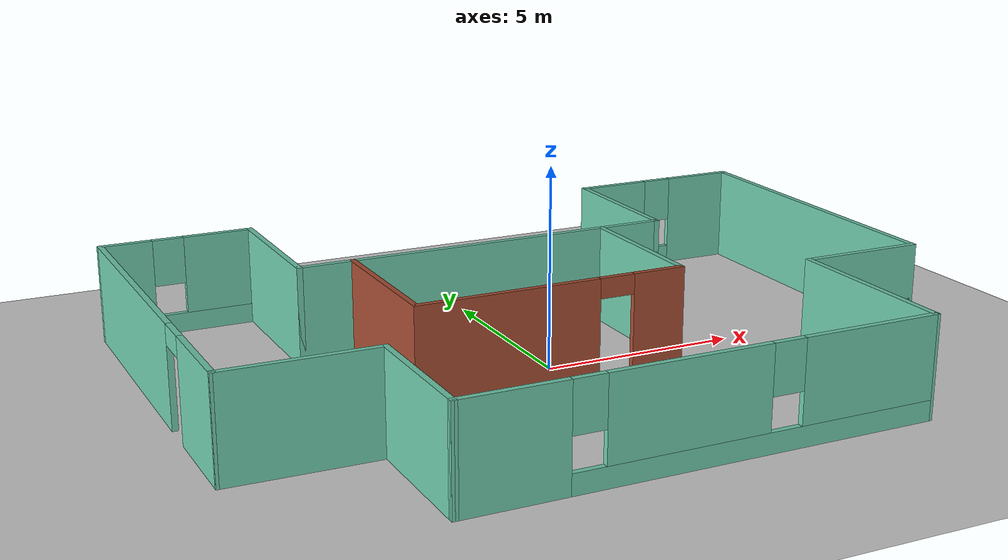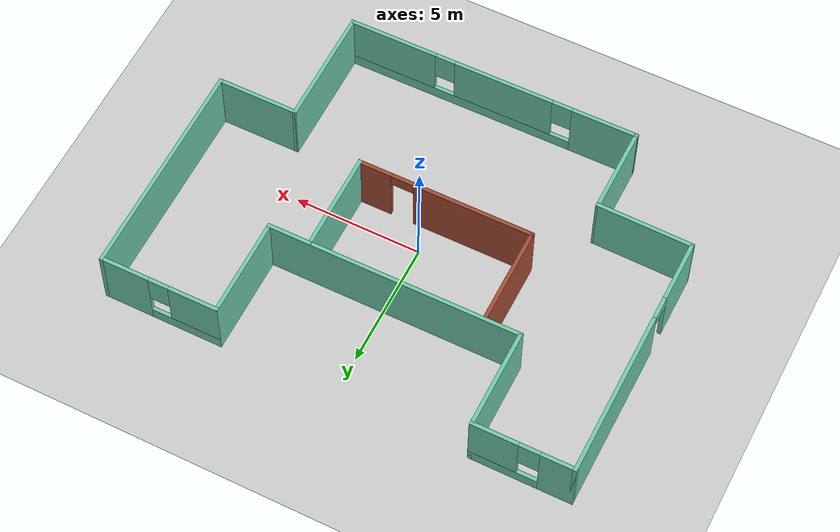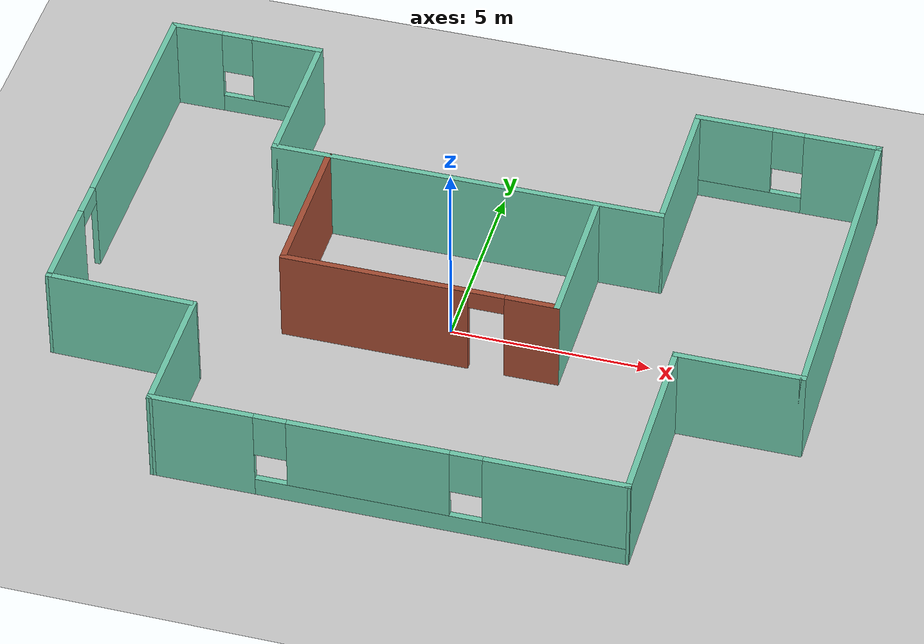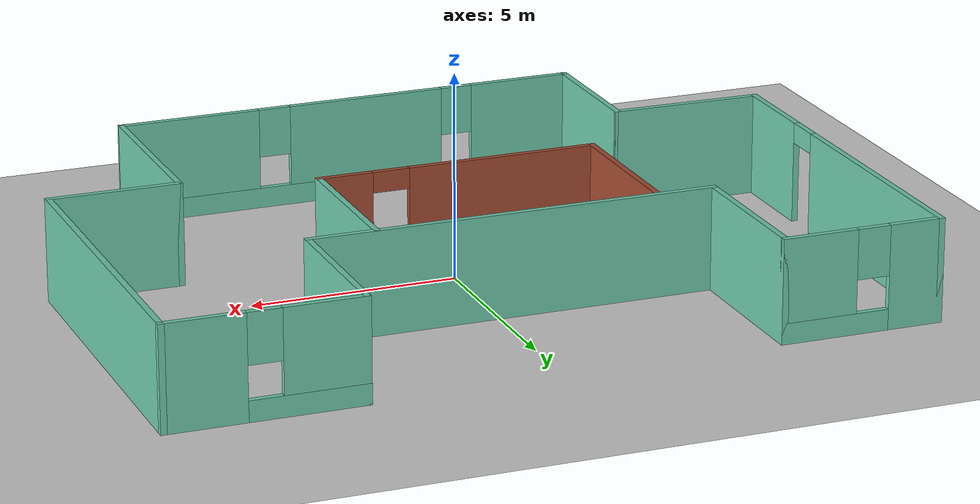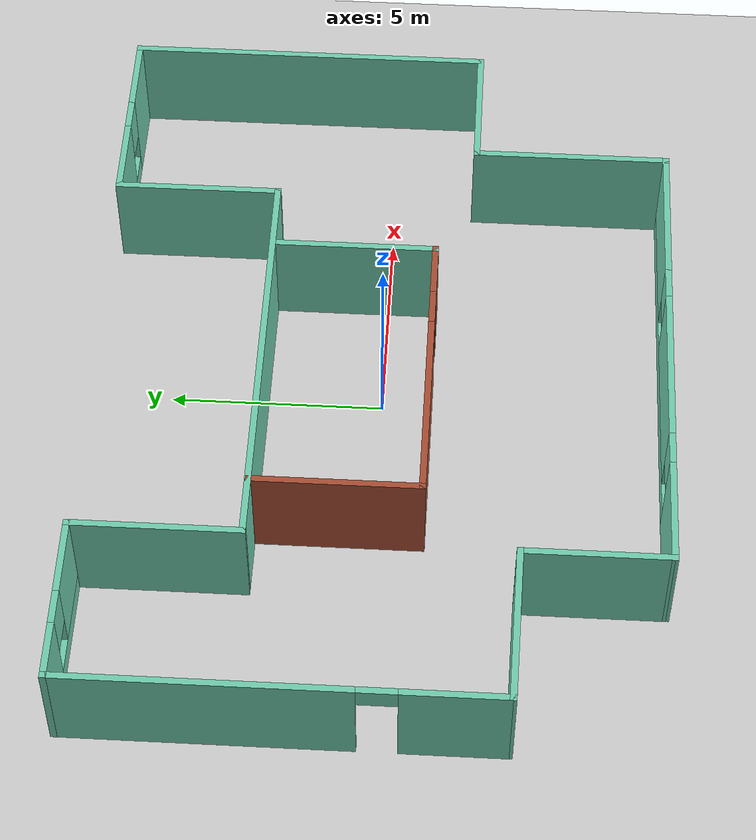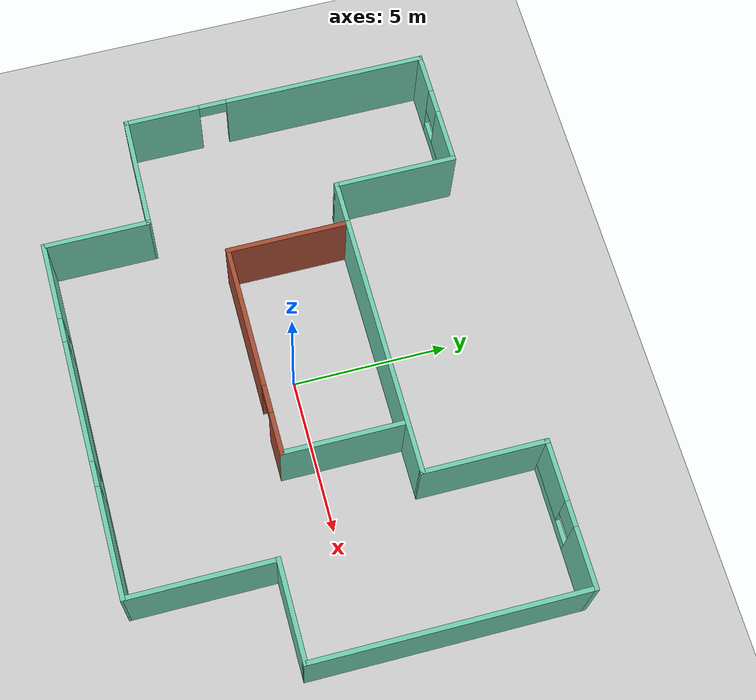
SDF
<sdf version="1.4">
 <world name="default">
  <include><uri>model://sun</uri></include>
  <model name="ground_plane">
   <static>1</static>
   <link name="link">
    <collision name="collision">
     <geometry><plane><normal>0 0 1</normal><size>100 100</size></plane></geometry>
     <surface>
      <contact><collide_bitmask>65535</collide_bitmask></contact>
      <friction><ode><mu>100</mu><mu2>50</mu2></ode></friction>
     </surface>
    </collision>
    <visual name="visual">
     <cast_shadows>0</cast_shadows>
     <geometry><plane><normal>0 0 1</normal><size>100 100</size></plane></geometry>
     <material>
      <script><uri>file://media/materials/scripts/gazebo.material</uri><name>Gazebo/Grey</name></script>
     </material>
    </visual>
   </link>
  </model>
  <model name="mybuilding">
   <link name="Wall_0">
    <pose>-7.22439 6.63019 0 0 -0 0</pose>
    <visual name="Wall_0_Visual_0">
     <pose>-1.32037 0 1.25 0 -0 0</pose>
     <geometry><box><size>1.35925 0.15 2.5</size></box></geometry>
     <material>
      <script><uri>file://media/materials/scripts/gazebo.material</uri><name>Gazebo/Grey</name></script>
      <ambient>0.435294 0.796078 0.67451 1</ambient>
     </material>
     <meta><layer>0</layer></meta>
    </visual>
    <collision name="Wall_0_Collision_0">
     <geometry><box><size>1.35925 0.15 2.5</size></box></geometry>
     <pose>-1.32037 0 1.25 0 -0 0</pose>
    </collision>
    <visual name="Wall_0_Visual_1">
     <pose>0.679626 0 0.25 0 -0 0</pose>
     <geometry><box><size>2.64075 0.15 0.5</size></box></geometry>
     <material>
      <script><uri>file://media/materials/scripts/gazebo.material</uri><name>Gazebo/Grey</name></script>
      <ambient>0.435294 0.796078 0.67451 1</ambient>
     </material>
     <meta><layer>0</layer></meta>
    </visual>
    <collision name="Wall_0_Collision_1">
     <geometry><box><size>2.64075 0.15 0.5</size></box></geometry>
     <pose>0.679626 0 0.25 0 -0 0</pose>
    </collision>
    <visual name="Wall_0_Visual_2">
     <pose>1.07963 0 1.5 0 -0 0</pose>
     <geometry><box><size>1.84075 0.15 2</size></box></geometry>
     <material>
      <script><uri>file://media/materials/scripts/gazebo.material</uri><name>Gazebo/Grey</name></script>
      <ambient>0.435294 0.796078 0.67451 1</ambient>
     </material>
     <meta><layer>0</layer></meta>
    </visual>
    <collision name="Wall_0_Collision_2">
     <geometry><box><size>1.84075 0.15 2</size></box></geometry>
     <pose>1.07963 0 1.5 0 -0 0</pose>
    </collision>
    <visual name="Wall_0_Visual_3">
     <pose>-0.240749 0 1.9 0 -0 0</pose>
     <geometry><box><size>0.8 0.15 1.2</size></box></geometry>
     <material>
      <script><uri>file://media/materials/scripts/gazebo.material</uri><name>Gazebo/Grey</name></script>
      <ambient>0.435294 0.796078 0.67451 1</ambient>
     </material>
     <meta><layer>0</layer></meta>
    </visual>
    <collision name="Wall_0_Collision_3">
     <geometry><box><size>0.8 0.15 1.2</size></box></geometry>
     <pose>-0.240749 0 1.9 0 -0 0</pose>
    </collision>
   </link>
   <link name="Wall_1">
    <collision name="Wall_1_Collision">
     <geometry><box><size>4 0.15 2.5</size></box></geometry>
     <pose>0 0 1.25 0 -0 0</pose>
    </collision>
    <visual name="Wall_1_Visual">
     <pose>0 0 1.25 0 -0 0</pose>
     <geometry><box><size>4 0.15 2.5</size></box></geometry>
     <material>
      <script><uri>file://media/materials/scripts/gazebo.material</uri><name>Gazebo/Grey</name></script>
      <ambient>0.435294 0.796078 0.67451 1</ambient>
     </material>
     <meta><layer>0</layer></meta>
    </visual>
    <pose>-5.29939 4.70519 0 0 0 -1.5708</pose>
   </link>
   <link name="Wall_10">
    <pose>0.280609 -6.59981 0 0 -0 0.005199</pose>
    <visual name="Wall_10_Visual_0">
     <pose>-4.54114 0 1.25 0 -0 0</pose>
     <geometry><box><size>2.60788 0.15 2.5</size></box></geometry>
     <material>
      <script><uri>file://media/materials/scripts/gazebo.material</uri><name>Gazebo/Grey</name></script>
      <ambient>0.435294 0.796078 0.67451 1</ambient>
     </material>
     <meta><layer>0</layer></meta>
    </visual>
    <collision name="Wall_10_Collision_0">
     <geometry><box><size>2.60788 0.15 2.5</size></box></geometry>
     <pose>-4.54114 0 1.25 0 -0 0</pose>
    </collision>
    <visual name="Wall_10_Visual_1">
     <pose>1.30394 0 0.25 0 -0 0</pose>
     <geometry><box><size>9.08228 0.15 0.5</size></box></geometry>
     <material>
      <script><uri>file://media/materials/scripts/gazebo.material</uri><name>Gazebo/Grey</name></script>
      <ambient>0.435294 0.796078 0.67451 1</ambient>
     </material>
     <meta><layer>0</layer></meta>
    </visual>
    <collision name="Wall_10_Collision_1">
     <geometry><box><size>9.08228 0.15 0.5</size></box></geometry>
     <pose>1.30394 0 0.25 0 -0 0</pose>
    </collision>
    <visual name="Wall_10_Visual_2">
     <pose>-0.463066 0 1.5 0 -0 0</pose>
     <geometry><box><size>3.94827 0.15 2</size></box></geometry>
     <material>
      <script><uri>file://media/materials/scripts/gazebo.material</uri><name>Gazebo/Grey</name></script>
      <ambient>0.435294 0.796078 0.67451 1</ambient>
     </material>
     <meta><layer>0</layer></meta>
    </visual>
    <collision name="Wall_10_Collision_2">
     <geometry><box><size>3.94827 0.15 2</size></box></geometry>
     <pose>-0.463066 0 1.5 0 -0 0</pose>
    </collision>
    <visual name="Wall_10_Visual_3">
     <pose>4.07807 0 1.5 0 -0 0</pose>
     <geometry><box><size>3.53401 0.15 2</size></box></geometry>
     <material>
      <script><uri>file://media/materials/scripts/gazebo.material</uri><name>Gazebo/Grey</name></script>
      <ambient>0.435294 0.796078 0.67451 1</ambient>
     </material>
     <meta><layer>0</layer></meta>
    </visual>
    <collision name="Wall_10_Collision_3">
     <geometry><box><size>3.53401 0.15 2</size></box></geometry>
     <pose>4.07807 0 1.5 0 -0 0</pose>
    </collision>
    <visual name="Wall_10_Visual_4">
     <pose>-2.8372 0 1.9 0 -0 0</pose>
     <geometry><box><size>0.8 0.15 1.2</size></box></geometry>
     <material>
      <script><uri>file://media/materials/scripts/gazebo.material</uri><name>Gazebo/Grey</name></script>
      <ambient>0.435294 0.796078 0.67451 1</ambient>
     </material>
     <meta><layer>0</layer></meta>
    </visual>
    <collision name="Wall_10_Collision_4">
     <geometry><box><size>0.8 0.15 1.2</size></box></geometry>
     <pose>-2.8372 0 1.9 0 -0 0</pose>
    </collision>
    <visual name="Wall_10_Visual_5">
     <pose>1.91107 0 1.9 0 -0 0</pose>
     <geometry><box><size>0.8 0.15 1.2</size></box></geometry>
     <material>
      <script><uri>file://media/materials/scripts/gazebo.material</uri><name>Gazebo/Grey</name></script>
      <ambient>0.435294 0.796078 0.67451 1</ambient>
     </material>
     <meta><layer>0</layer></meta>
    </visual>
    <collision name="Wall_10_Collision_5">
     <geometry><box><size>0.8 0.15 1.2</size></box></geometry>
     <pose>1.91107 0 1.9 0 -0 0</pose>
    </collision>
   </link>
   <link name="Wall_11">
    <collision name="Wall_11_Collision">
     <geometry><box><size>4.75 0.15 2.5</size></box></geometry>
     <pose>0 0 1.25 0 -0 0</pose>
    </collision>
    <visual name="Wall_11_Visual">
     <pose>0 0 1.25 0 -0 0</pose>
     <geometry><box><size>4.75 0.15 2.5</size></box></geometry>
     <material>
      <script><uri>file://media/materials/scripts/gazebo.material</uri><name>Gazebo/Grey</name></script>
      <ambient>0.435294 0.796078 0.67451 1</ambient>
     </material>
     <meta><layer>0</layer></meta>
    </visual>
    <pose>6.05061 -4.26981 0 0 -0 1.5708</pose>
   </link>
   <link name="Wall_12">
    <collision name="Wall_12_Collision">
     <geometry><box><size>3.25 0.15 2.5</size></box></geometry>
     <pose>0 0 1.25 0 -0 0</pose>
    </collision>
    <visual name="Wall_12_Visual">
     <pose>0 0 1.25 0 -0 0</pose>
     <geometry><box><size>3.25 0.15 2.5</size></box></geometry>
     <material>
      <script><uri>file://media/materials/scripts/gazebo.material</uri><name>Gazebo/Grey</name></script>
      <ambient>0.435294 0.796078 0.67451 1</ambient>
     </material>
     <meta><layer>0</layer></meta>
    </visual>
    <pose>7.60061 -1.96981 0 0 -0 0</pose>
   </link>
   <link name="Wall_13">
    <collision name="Wall_13_Collision">
     <geometry><box><size>8.75 0.15 2.5</size></box></geometry>
     <pose>0 0 1.25 0 -0 0</pose>
    </collision>
    <visual name="Wall_13_Visual">
     <pose>0 0 1.25 0 -0 0</pose>
     <geometry><box><size>8.75 0.15 2.5</size></box></geometry>
     <material>
      <script><uri>file://media/materials/scripts/gazebo.material</uri><name>Gazebo/Grey</name></script>
      <ambient>0.435294 0.796078 0.67451 1</ambient>
     </material>
     <meta><layer>0</layer></meta>
    </visual>
    <pose>9.15061 2.33019 0 0 -0 1.5708</pose>
   </link>
   <link name="Wall_16">
    <pose>6.85061 6.63019 0 0 -0 3.14159</pose>
    <visual name="Wall_16_Visual_0">
     <pose>-1.39467 0 1.25 0 -0 0</pose>
     <geometry><box><size>1.96067 0.15 2.5</size></box></geometry>
     <material>
      <script><uri>file://media/materials/scripts/gazebo.material</uri><name>Gazebo/Grey</name></script>
      <ambient>0.435294 0.796078 0.67451 1</ambient>
     </material>
     <meta><layer>0</layer></meta>
    </visual>
    <collision name="Wall_16_Collision_0">
     <geometry><box><size>1.96067 0.15 2.5</size></box></geometry>
     <pose>-1.39467 0 1.25 0 -0 0</pose>
    </collision>
    <visual name="Wall_16_Visual_1">
     <pose>0.980335 0 0.25 0 -0 0</pose>
     <geometry><box><size>2.78933 0.15 0.5</size></box></geometry>
     <material>
      <script><uri>file://media/materials/scripts/gazebo.material</uri><name>Gazebo/Grey</name></script>
      <ambient>0.435294 0.796078 0.67451 1</ambient>
     </material>
     <meta><layer>0</layer></meta>
    </visual>
    <collision name="Wall_16_Collision_1">
     <geometry><box><size>2.78933 0.15 0.5</size></box></geometry>
     <pose>0.980335 0 0.25 0 -0 0</pose>
    </collision>
    <visual name="Wall_16_Visual_2">
     <pose>1.38034 0 1.5 0 -0 0</pose>
     <geometry><box><size>1.98933 0.15 2</size></box></geometry>
     <material>
      <script><uri>file://media/materials/scripts/gazebo.material</uri><name>Gazebo/Grey</name></script>
      <ambient>0.435294 0.796078 0.67451 1</ambient>
     </material>
     <meta><layer>0</layer></meta>
    </visual>
    <collision name="Wall_16_Collision_2">
     <geometry><box><size>1.98933 0.15 2</size></box></geometry>
     <pose>1.38034 0 1.5 0 -0 0</pose>
    </collision>
    <visual name="Wall_16_Visual_3">
     <pose>-0.01433 0 1.9 0 -0 0</pose>
     <geometry><box><size>0.8 0.15 1.2</size></box></geometry>
     <material>
      <script><uri>file://media/materials/scripts/gazebo.material</uri><name>Gazebo/Grey</name></script>
      <ambient>0.435294 0.796078 0.67451 1</ambient>
     </material>
     <meta><layer>0</layer></meta>
    </visual>
    <collision name="Wall_16_Collision_3">
     <geometry><box><size>0.8 0.15 1.2</size></box></geometry>
     <pose>-0.01433 0 1.9 0 -0 0</pose>
    </collision>
   </link>
   <link name="Wall_2">
    <collision name="Wall_2_Collision">
     <geometry><box><size>10 0.15 2.5</size></box></geometry>
     <pose>0 0 1.25 0 -0 0</pose>
    </collision>
    <visual name="Wall_2_Visual">
     <pose>0 0 1.25 0 -0 0</pose>
     <geometry><box><size>10 0.15 2.5</size></box></geometry>
     <material>
      <script><uri>file://media/materials/scripts/gazebo.material</uri><name>Gazebo/Grey</name></script>
      <ambient>0.435294 0.796078 0.67451 1</ambient>
     </material>
     <meta><layer>0</layer></meta>
    </visual>
    <pose>-0.374391 2.78019 0 0 -0 0</pose>
   </link>
   <link name="Wall_20">
    <collision name="Wall_20_Collision">
     <geometry><box><size>4 0.15 2.5</size></box></geometry>
     <pose>0 0 1.25 0 -0 0</pose>
    </collision>
    <visual name="Wall_20_Visual">
     <pose>0 0 1.25 0 -0 0</pose>
     <geometry><box><size>4 0.15 2.5</size></box></geometry>
     <material>
      <script><uri>file://media/materials/scripts/gazebo.material</uri><name>Gazebo/Bricks</name></script>
      <ambient>0.435294 0.796078 0.67451 1</ambient>
     </material>
     <meta><layer>0</layer></meta>
    </visual>
    <pose>-3.91339 0.834194 0 0 0 -1.5708</pose>
   </link>
   <link name="Wall_21">
    <pose>-0.488391 -1.09081 0 0 -0 0</pose>
    <visual name="Wall_21_Visual_0">
     <pose>-1.13745 0 1.25 0 -0 0</pose>
     <geometry><box><size>4.72509 0.15 2.5</size></box></geometry>
     <material>
      <script><uri>file://media/materials/scripts/gazebo.material</uri><name>Gazebo/Bricks</name></script>
      <ambient>0.435294 0.796078 0.67451 1</ambient>
     </material>
     <meta><layer>0</layer></meta>
    </visual>
    <collision name="Wall_21_Collision_0">
     <geometry><box><size>4.72509 0.15 2.5</size></box></geometry>
     <pose>-1.13745 0 1.25 0 -0 0</pose>
    </collision>
    <visual name="Wall_21_Visual_1">
     <pose>2.81255 0 1.25 0 -0 0</pose>
     <geometry><box><size>1.37491 0.15 2.5</size></box></geometry>
     <material>
      <script><uri>file://media/materials/scripts/gazebo.material</uri><name>Gazebo/Bricks</name></script>
      <ambient>0.435294 0.796078 0.67451 1</ambient>
     </material>
     <meta><layer>0</layer></meta>
    </visual>
    <collision name="Wall_21_Collision_1">
     <geometry><box><size>1.37491 0.15 2.5</size></box></geometry>
     <pose>2.81255 0 1.25 0 -0 0</pose>
    </collision>
    <visual name="Wall_21_Visual_2">
     <pose>1.67509 0 2.25 0 -0 0</pose>
     <geometry><box><size>0.9 0.15 0.5</size></box></geometry>
     <material>
      <script><uri>file://media/materials/scripts/gazebo.material</uri><name>Gazebo/Bricks</name></script>
      <ambient>0.435294 0.796078 0.67451 1</ambient>
     </material>
     <meta><layer>0</layer></meta>
    </visual>
    <collision name="Wall_21_Collision_2">
     <geometry><box><size>0.9 0.15 0.5</size></box></geometry>
     <pose>1.67509 0 2.25 0 -0 0</pose>
    </collision>
   </link>
   <link name="Wall_26">
    <collision name="Wall_26_Collision">
     <geometry><box><size>4 0.15 2.5</size></box></geometry>
     <pose>0 0 1.25 0 -0 0</pose>
    </collision>
    <visual name="Wall_26_Visual">
     <pose>0 0 1.25 0 -0 0</pose>
     <geometry><box><size>4 0.15 2.5</size></box></geometry>
     <material>
      <script><uri>file://media/materials/scripts/gazebo.material</uri><name>Gazebo/Grey</name></script>
      <ambient>0.435294 0.796078 0.67451 1</ambient>
     </material>
     <meta><layer>0</layer></meta>
    </visual>
    <pose>2.93661 0.834194 0 0 -0 1.5708</pose>
   </link>
   <link name="Wall_3">
    <collision name="Wall_3_Collision">
     <geometry><box><size>4 0.15 2.5</size></box></geometry>
     <pose>0 0 1.25 0 -0 0</pose>
    </collision>
    <visual name="Wall_3_Visual">
     <pose>0 0 1.25 0 -0 0</pose>
     <geometry><box><size>4 0.15 2.5</size></box></geometry>
     <material>
      <script><uri>file://media/materials/scripts/gazebo.material</uri><name>Gazebo/Grey</name></script>
      <ambient>0.435294 0.796078 0.67451 1</ambient>
     </material>
     <meta><layer>0</layer></meta>
    </visual>
    <pose>4.55061 4.70519 0 0 -0 1.5708</pose>
   </link>
   <link name="Wall_6">
    <pose>-9.14939 1.70519 0 0 0 -1.5708</pose>
    <visual name="Wall_6_Visual_0">
     <pose>-1.68817 0 1.25 0 -0 0</pose>
     <geometry><box><size>6.62366 0.15 2.5</size></box></geometry>
     <material>
      <script><uri>file://media/materials/scripts/gazebo.material</uri><name>Gazebo/Grey</name></script>
      <ambient>0.435294 0.796078 0.67451 1</ambient>
     </material>
     <meta><layer>0</layer></meta>
    </visual>
    <collision name="Wall_6_Collision_0">
     <geometry><box><size>6.62366 0.15 2.5</size></box></geometry>
     <pose>-1.68817 0 1.25 0 -0 0</pose>
    </collision>
    <visual name="Wall_6_Visual_1">
     <pose>3.76183 0 1.25 0 -0 0</pose>
     <geometry><box><size>2.47634 0.15 2.5</size></box></geometry>
     <material>
      <script><uri>file://media/materials/scripts/gazebo.material</uri><name>Gazebo/Grey</name></script>
      <ambient>0.435294 0.796078 0.67451 1</ambient>
     </material>
     <meta><layer>0</layer></meta>
    </visual>
    <collision name="Wall_6_Collision_1">
     <geometry><box><size>2.47634 0.15 2.5</size></box></geometry>
     <pose>3.76183 0 1.25 0 -0 0</pose>
    </collision>
    <visual name="Wall_6_Visual_2">
     <pose>2.07366 0 2.25 0 -0 0</pose>
     <geometry><box><size>0.9 0.15 0.5</size></box></geometry>
     <material>
      <script><uri>file://media/materials/scripts/gazebo.material</uri><name>Gazebo/Grey</name></script>
      <ambient>0.435294 0.796078 0.67451 1</ambient>
     </material>
     <meta><layer>0</layer></meta>
    </visual>
    <collision name="Wall_6_Collision_2">
     <geometry><box><size>0.9 0.15 0.5</size></box></geometry>
     <pose>2.07366 0 2.25 0 -0 0</pose>
    </collision>
   </link>
   <link name="Wall_8">
    <collision name="Wall_8_Collision">
     <geometry><box><size>3.81049 0.15 2.5</size></box></geometry>
     <pose>0 0 1.25 0 -0 0</pose>
    </collision>
    <visual name="Wall_8_Visual">
     <pose>0 0 1.25 0 -0 0</pose>
     <geometry><box><size>3.81049 0.15 2.5</size></box></geometry>
     <material>
      <script><uri>file://media/materials/scripts/gazebo.material</uri><name>Gazebo/Grey</name></script>
      <ambient>0.435294 0.796078 0.67451 1</ambient>
     </material>
     <meta><layer>0</layer></meta>
    </visual>
    <pose>-7.31939 -3.24981 0 0 0 -0.016392</pose>
   </link>
   <link name="Wall_9">
    <collision name="Wall_9_Collision">
     <geometry><box><size>3.5 0.15 2.5</size></box></geometry>
     <pose>0 0 1.25 0 -0 0</pose>
    </collision>
    <visual name="Wall_9_Visual">
     <pose>0 0 1.25 0 -0 0</pose>
     <geometry><box><size>3.5 0.15 2.5</size></box></geometry>
     <material>
      <script><uri>file://media/materials/scripts/gazebo.material</uri><name>Gazebo/Grey</name></script>
      <ambient>0.435294 0.796078 0.67451 1</ambient>
     </material>
     <meta><layer>0</layer></meta>
    </visual>
    <pose>-5.48939 -4.95481 0 0 0 -1.5708</pose>
   </link>
   <static>1</static>
  </model>
 </world>
</sdf>
